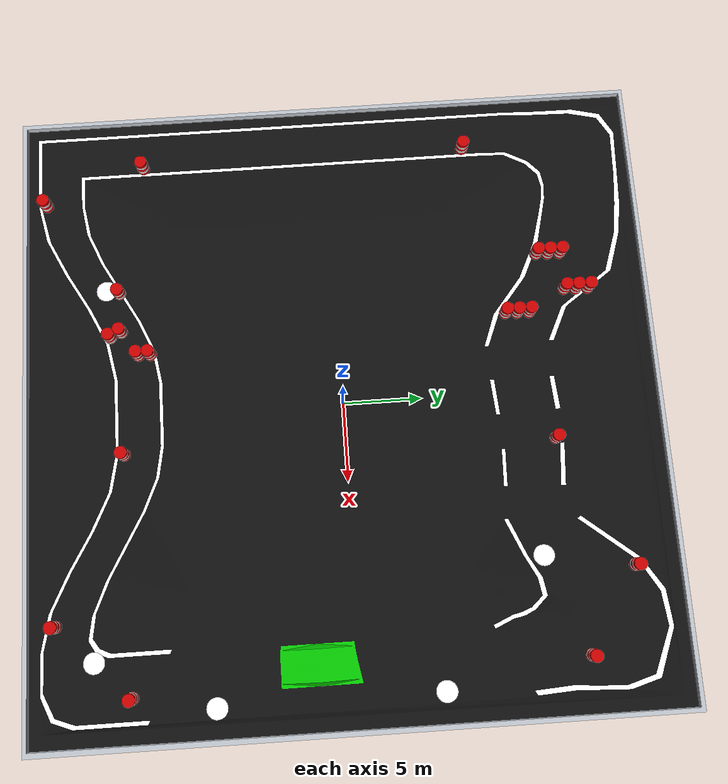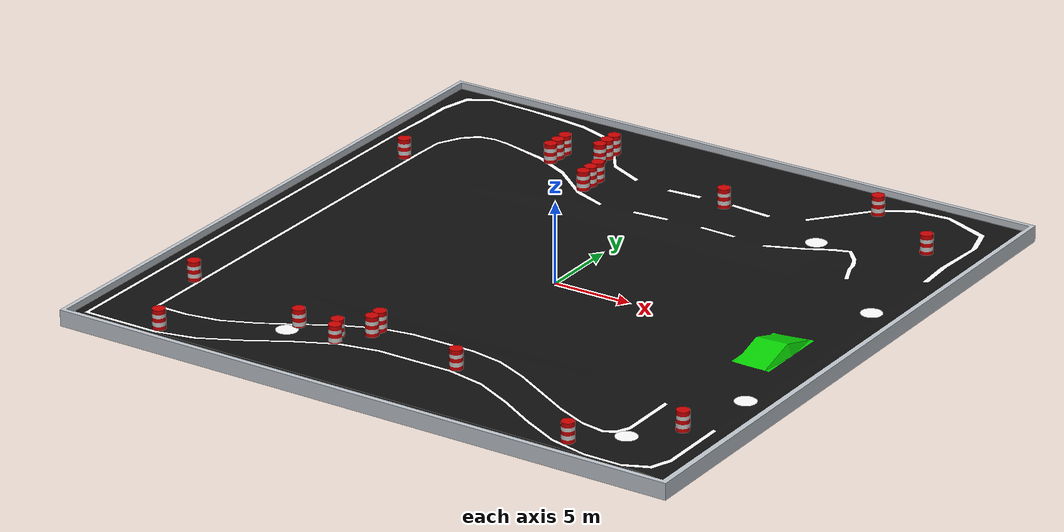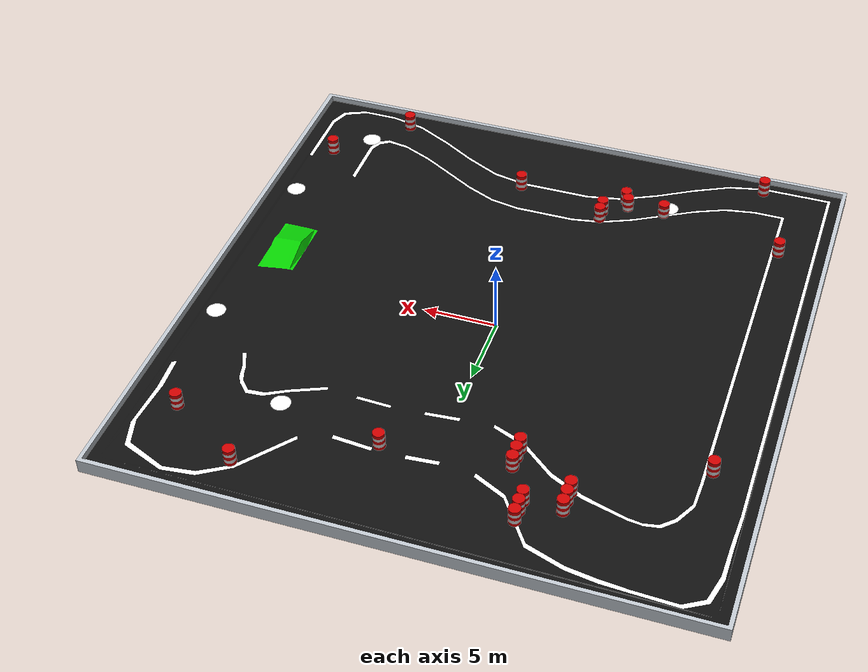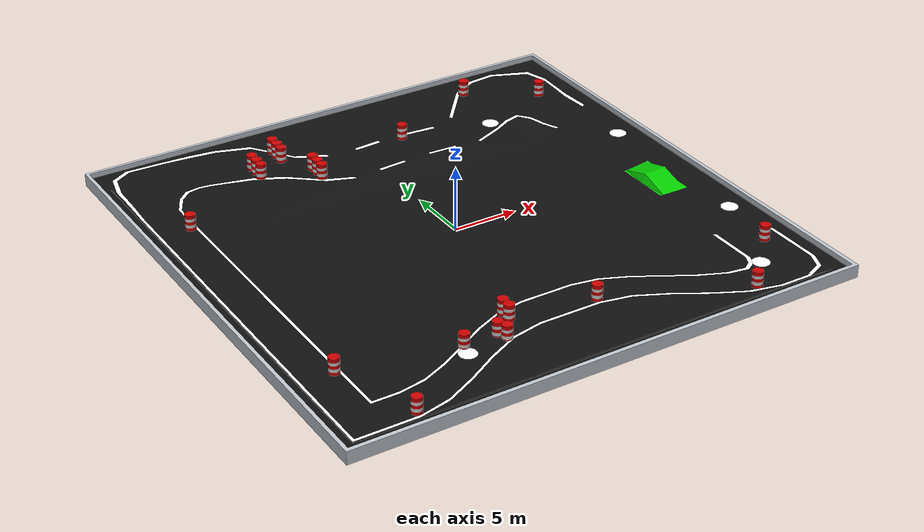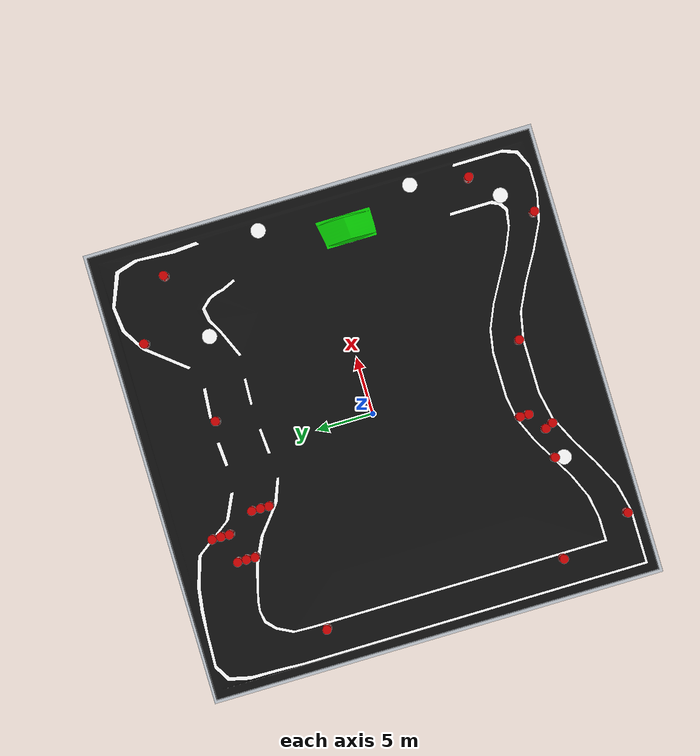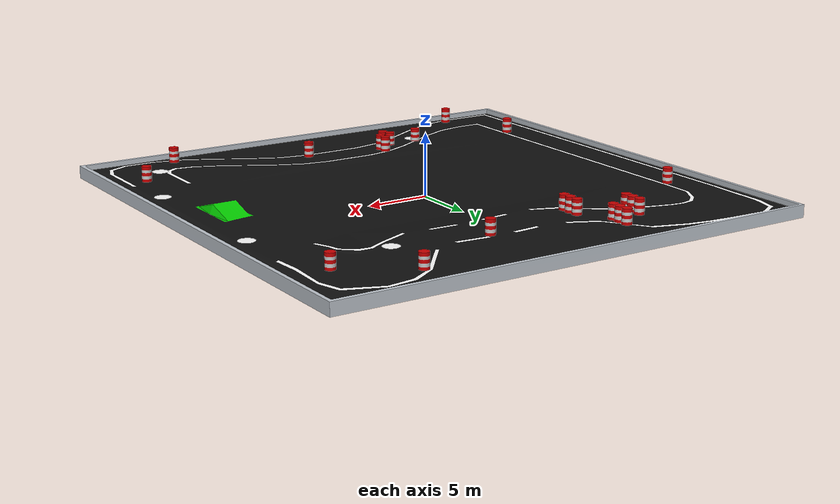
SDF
<sdf version="1.7">
 <world name="default">
  <light name="sun" type="directional">
   <pose>0 0 10 0 -0 0</pose>
   <diffuse>0.8 0.8 0.8 1</diffuse>
   <specular>0.2 0.2 0.2 1</specular>
   <attenuation>
    <range>1000</range>
    <constant>0.9</constant>
    <linear>0.01</linear>
    <quadratic>0.001</quadratic>
   </attenuation>
   <direction>-0.5 0.1 -0.9</direction>
   <spot><inner_angle>0</inner_angle><outer_angle>0</outer_angle><falloff>0</falloff></spot>
  </light>
  <physics type="ode">
   <max_step_size>0.001</max_step_size>
   <real_time_factor>1</real_time_factor>
   <real_time_update_rate>1000</real_time_update_rate>
  </physics>
  <scene><ambient>0.4 0.4 0.4 1</ambient><background>0.7 0.7 0.7 1</background><shadows>1</shadows></scene>
  <spherical_coordinates>
   <surface_model>EARTH_WGS84</surface_model>
   <latitude_deg>0</latitude_deg>
   <longitude_deg>0</longitude_deg>
   <elevation>0</elevation>
   <heading_deg>0</heading_deg>
  </spherical_coordinates>
  <gravity>0 0 -9.8</gravity>
  <magnetic_field>6e-06 2.3e-05 -4.2e-05</magnetic_field>
  <atmosphere type="adiabatic"/>
  <model name="gazebo_world_5_Circle">
   <link name="gazebo_world_5_Circle_link">
    <inertial>
     <mass>1</mass>
     <inertia><ixx>1</ixx><ixy>0</ixy><ixz>0</ixz><iyy>1</iyy><iyz>0</iyz><izz>1</izz></inertia>
    </inertial>
    <collision name="gazebo_world_5_Circle_link_collision">
     <geometry><mesh><scale>1 1 1</scale><uri>model://gazebo_world_5_Circle.dae</uri></mesh></geometry>
    </collision>
    <visual name="gazebo_world_5_Circle_link_visual">
     <geometry><mesh><scale>1 1 1</scale><uri>model://gazebo_world_5_Circle.dae</uri></mesh></geometry>
    </visual>
   </link>
   <static>1</static>
  </model>
  <model name="gazebo_world_5_Circle.003">
   <link name="gazebo_world_5_Circle.003_link">
    <inertial>
     <mass>1</mass>
     <inertia><ixx>1</ixx><ixy>0</ixy><ixz>0</ixz><iyy>1</iyy><iyz>0</iyz><izz>1</izz></inertia>
    </inertial>
    <collision name="gazebo_world_5_Circle.003_link_collision">
     <geometry><mesh><scale>1 1 1</scale><uri>model://gazebo_world_5_Circle.003.dae</uri></mesh></geometry>
    </collision>
    <visual name="gazebo_world_5_Circle.003_link_visual">
     <geometry><mesh><scale>1 1 1</scale><uri>model://gazebo_world_5_Circle.003.dae</uri></mesh></geometry>
    </visual>
   </link>
   <static>1</static>
  </model>
  <model name="gazebo_world_5_Circle.002">
   <link name="gazebo_world_5_Circle.002_link">
    <inertial>
     <mass>1</mass>
     <inertia><ixx>1</ixx><ixy>0</ixy><ixz>0</ixz><iyy>1</iyy><iyz>0</iyz><izz>1</izz></inertia>
    </inertial>
    <collision name="gazebo_world_5_Circle.002_link_collision">
     <geometry><mesh><scale>1 1 1</scale><uri>model://gazebo_world_5_Circle.002.dae</uri></mesh></geometry>
    </collision>
    <visual name="gazebo_world_5_Circle.002_link_visual">
     <geometry><mesh><scale>1 1 1</scale><uri>model://gazebo_world_5_Circle.002.dae</uri></mesh></geometry>
    </visual>
   </link>
   <static>1</static>
  </model>
  <model name="gazebo_world_5_Circle.012">
   <link name="gazebo_world_5_Circle.012_link">
    <inertial>
     <mass>1</mass>
     <inertia><ixx>1</ixx><ixy>0</ixy><ixz>0</ixz><iyy>1</iyy><iyz>0</iyz><izz>1</izz></inertia>
    </inertial>
    <collision name="gazebo_world_5_Circle.012_link_collision">
     <geometry><mesh><scale>1 1 1</scale><uri>model://gazebo_world_5_Circle.012.dae</uri></mesh></geometry>
    </collision>
    <visual name="gazebo_world_5_Circle.012_link_visual">
     <geometry><mesh><scale>1 1 1</scale><uri>model://gazebo_world_5_Circle.012.dae</uri></mesh></geometry>
    </visual>
   </link>
   <static>1</static>
  </model>
  <model name="gazebo_world_5_Circle.004">
   <link name="gazebo_world_5_Circle.004_link">
    <inertial>
     <mass>1</mass>
     <inertia><ixx>1</ixx><ixy>0</ixy><ixz>0</ixz><iyy>1</iyy><iyz>0</iyz><izz>1</izz></inertia>
    </inertial>
    <collision name="gazebo_world_5_Circle.004_link_collision">
     <geometry><mesh><scale>1 1 1</scale><uri>model://gazebo_world_5_Circle.004.dae</uri></mesh></geometry>
    </collision>
    <visual name="gazebo_world_5_Circle.004_link_visual">
     <geometry><mesh><scale>1 1 1</scale><uri>model://gazebo_world_5_Circle.004.dae</uri></mesh></geometry>
    </visual>
   </link>
   <static>1</static>
  </model>
  <model name="gazebo_world_5_Circle.005">
   <link name="gazebo_world_5_Circle.005_link">
    <inertial>
     <mass>1</mass>
     <inertia><ixx>1</ixx><ixy>0</ixy><ixz>0</ixz><iyy>1</iyy><iyz>0</iyz><izz>1</izz></inertia>
    </inertial>
    <collision name="gazebo_world_5_Circle.005_link_collision">
     <geometry><mesh><scale>1 1 1</scale><uri>model://gazebo_world_5_Circle.005.dae</uri></mesh></geometry>
    </collision>
    <visual name="gazebo_world_5_Circle.005_link_visual">
     <geometry><mesh><scale>1 1 1</scale><uri>model://gazebo_world_5_Circle.005.dae</uri></mesh></geometry>
    </visual>
   </link>
   <static>1</static>
  </model>
  <model name="gazebo_world_5_Circle.015">
   <link name="gazebo_world_5_Circle.015_link">
    <inertial>
     <mass>1</mass>
     <inertia><ixx>1</ixx><ixy>0</ixy><ixz>0</ixz><iyy>1</iyy><iyz>0</iyz><izz>1</izz></inertia>
    </inertial>
    <collision name="gazebo_world_5_Circle.015_link_collision">
     <geometry><mesh><scale>1 1 1</scale><uri>model://gazebo_world_5_Circle.015.dae</uri></mesh></geometry>
    </collision>
    <visual name="gazebo_world_5_Circle.015_link_visual">
     <geometry><mesh><scale>1 1 1</scale><uri>model://gazebo_world_5_Circle.015.dae</uri></mesh></geometry>
    </visual>
   </link>
   <static>1</static>
  </model>
  <model name="gazebo_world_5_Circle.006">
   <link name="gazebo_world_5_Circle.006_link">
    <inertial>
     <mass>1</mass>
     <inertia><ixx>1</ixx><ixy>0</ixy><ixz>0</ixz><iyy>1</iyy><iyz>0</iyz><izz>1</izz></inertia>
    </inertial>
    <collision name="gazebo_world_5_Circle.006_link_collision">
     <geometry><mesh><scale>1 1 1</scale><uri>model://gazebo_world_5_Circle.006.dae</uri></mesh></geometry>
    </collision>
    <visual name="gazebo_world_5_Circle.006_link_visual">
     <geometry><mesh><scale>1 1 1</scale><uri>model://gazebo_world_5_Circle.006.dae</uri></mesh></geometry>
    </visual>
   </link>
   <static>1</static>
  </model>
  <model name="gazebo_world_5_Circle.009">
   <link name="gazebo_world_5_Circle.009_link">
    <inertial>
     <mass>1</mass>
     <inertia><ixx>1</ixx><ixy>0</ixy><ixz>0</ixz><iyy>1</iyy><iyz>0</iyz><izz>1</izz></inertia>
    </inertial>
    <collision name="gazebo_world_5_Circle.009_link_collision">
     <geometry><mesh><scale>1 1 1</scale><uri>model://gazebo_world_5_Circle.009.dae</uri></mesh></geometry>
    </collision>
    <visual name="gazebo_world_5_Circle.009_link_visual">
     <geometry><mesh><scale>1 1 1</scale><uri>model://gazebo_world_5_Circle.009.dae</uri></mesh></geometry>
    </visual>
   </link>
   <static>1</static>
  </model>
  <model name="gazebo_world_5_Circle.007">
   <link name="gazebo_world_5_Circle.007_link">
    <inertial>
     <mass>1</mass>
     <inertia><ixx>1</ixx><ixy>0</ixy><ixz>0</ixz><iyy>1</iyy><iyz>0</iyz><izz>1</izz></inertia>
    </inertial>
    <collision name="gazebo_world_5_Circle.007_link_collision">
     <geometry><mesh><scale>1 1 1</scale><uri>model://gazebo_world_5_Circle.007.dae</uri></mesh></geometry>
    </collision>
    <visual name="gazebo_world_5_Circle.007_link_visual">
     <geometry><mesh><scale>1 1 1</scale><uri>model://gazebo_world_5_Circle.007.dae</uri></mesh></geometry>
    </visual>
   </link>
   <static>1</static>
  </model>
  <model name="gazebo_world_5_Circle.022">
   <link name="gazebo_world_5_Circle.022_link">
    <inertial>
     <mass>1</mass>
     <inertia><ixx>1</ixx><ixy>0</ixy><ixz>0</ixz><iyy>1</iyy><iyz>0</iyz><izz>1</izz></inertia>
    </inertial>
    <collision name="gazebo_world_5_Circle.022_link_collision">
     <geometry><mesh><scale>1 1 1</scale><uri>model://gazebo_world_5_Circle.022.dae</uri></mesh></geometry>
    </collision>
    <visual name="gazebo_world_5_Circle.022_link_visual">
     <geometry><mesh><scale>1 1 1</scale><uri>model://gazebo_world_5_Circle.022.dae</uri></mesh></geometry>
    </visual>
   </link>
   <static>1</static>
  </model>
  <model name="gazebo_world_5_Circle.008">
   <link name="gazebo_world_5_Circle.008_link">
    <inertial>
     <mass>1</mass>
     <inertia><ixx>1</ixx><ixy>0</ixy><ixz>0</ixz><iyy>1</iyy><iyz>0</iyz><izz>1</izz></inertia>
    </inertial>
    <collision name="gazebo_world_5_Circle.008_link_collision">
     <geometry><mesh><scale>1 1 1</scale><uri>model://gazebo_world_5_Circle.008.dae</uri></mesh></geometry>
    </collision>
    <visual name="gazebo_world_5_Circle.008_link_visual">
     <geometry><mesh><scale>1 1 1</scale><uri>model://gazebo_world_5_Circle.008.dae</uri></mesh></geometry>
    </visual>
   </link>
   <static>1</static>
  </model>
  <model name="gazebo_world_5_Circle.016">
   <link name="gazebo_world_5_Circle.016_link">
    <inertial>
     <mass>1</mass>
     <inertia><ixx>1</ixx><ixy>0</ixy><ixz>0</ixz><iyy>1</iyy><iyz>0</iyz><izz>1</izz></inertia>
    </inertial>
    <collision name="gazebo_world_5_Circle.016_link_collision">
     <geometry><mesh><scale>1 1 1</scale><uri>model://gazebo_world_5_Circle.016.dae</uri></mesh></geometry>
    </collision>
    <visual name="gazebo_world_5_Circle.016_link_visual">
     <geometry><mesh><scale>1 1 1</scale><uri>model://gazebo_world_5_Circle.016.dae</uri></mesh></geometry>
    </visual>
   </link>
   <static>1</static>
  </model>
  <model name="gazebo_world_5_Plane">
   <link name="gazebo_world_5_Plane_link">
    <inertial>
     <mass>1</mass>
     <inertia><ixx>1</ixx><ixy>0</ixy><ixz>0</ixz><iyy>1</iyy><iyz>0</iyz><izz>1</izz></inertia>
    </inertial>
    <collision name="gazebo_world_5_Plane_link_collision">
     <geometry><mesh><scale>1 1 1</scale><uri>model://gazebo_world_5_Plane_dotted.dae</uri></mesh></geometry>
    </collision>
    <visual name="gazebo_world_5_Plane_link_visual">
     <geometry><mesh><scale>1 1 1</scale><uri>model://gazebo_world_5_Plane_dotted.dae</uri></mesh></geometry>
    </visual>
   </link>
   <static>1</static>
  </model>
  <model name="gazebo_world_5_Circle.010">
   <link name="gazebo_world_5_Circle.010_link">
    <inertial>
     <mass>1</mass>
     <inertia><ixx>1</ixx><ixy>0</ixy><ixz>0</ixz><iyy>1</iyy><iyz>0</iyz><izz>1</izz></inertia>
    </inertial>
    <collision name="gazebo_world_5_Circle.010_link_collision">
     <geometry><mesh><scale>1 1 1</scale><uri>model://gazebo_world_5_Circle.010.dae</uri></mesh></geometry>
    </collision>
    <visual name="gazebo_world_5_Circle.010_link_visual">
     <geometry><mesh><scale>1 1 1</scale><uri>model://gazebo_world_5_Circle.010.dae</uri></mesh></geometry>
    </visual>
   </link>
   <static>1</static>
  </model>
  <model name="gazebo_world_5_Circle.013">
   <link name="gazebo_world_5_Circle.013_link">
    <inertial>
     <mass>1</mass>
     <inertia><ixx>1</ixx><ixy>0</ixy><ixz>0</ixz><iyy>1</iyy><iyz>0</iyz><izz>1</izz></inertia>
    </inertial>
    <collision name="gazebo_world_5_Circle.013_link_collision">
     <geometry><mesh><scale>1 1 1</scale><uri>model://gazebo_world_5_Circle.013.dae</uri></mesh></geometry>
    </collision>
    <visual name="gazebo_world_5_Circle.013_link_visual">
     <geometry><mesh><scale>1 1 1</scale><uri>model://gazebo_world_5_Circle.013.dae</uri></mesh></geometry>
    </visual>
   </link>
   <static>1</static>
  </model>
  <model name="gazebo_world_5_Circle.011">
   <link name="gazebo_world_5_Circle.011_link">
    <inertial>
     <mass>1</mass>
     <inertia><ixx>1</ixx><ixy>0</ixy><ixz>0</ixz><iyy>1</iyy><iyz>0</iyz><izz>1</izz></inertia>
    </inertial>
    <collision name="gazebo_world_5_Circle.011_link_collision">
     <geometry><mesh><scale>1 1 1</scale><uri>model://gazebo_world_5_Circle.011.dae</uri></mesh></geometry>
    </collision>
    <visual name="gazebo_world_5_Circle.011_link_visual">
     <geometry><mesh><scale>1 1 1</scale><uri>model://gazebo_world_5_Circle.011.dae</uri></mesh></geometry>
    </visual>
   </link>
   <static>1</static>
  </model>
  <model name="gazebo_world_5_Circle.017">
   <link name="gazebo_world_5_Circle.017_link">
    <inertial>
     <mass>1</mass>
     <inertia><ixx>1</ixx><ixy>0</ixy><ixz>0</ixz><iyy>1</iyy><iyz>0</iyz><izz>1</izz></inertia>
    </inertial>
    <collision name="gazebo_world_5_Circle.017_link_collision">
     <geometry><mesh><scale>1 1 1</scale><uri>model://gazebo_world_5_Circle.017.dae</uri></mesh></geometry>
    </collision>
    <visual name="gazebo_world_5_Circle.017_link_visual">
     <geometry><mesh><scale>1 1 1</scale><uri>model://gazebo_world_5_Circle.017.dae</uri></mesh></geometry>
    </visual>
   </link>
   <static>1</static>
  </model>
  <model name="gazebo_world_5_Circle.023">
   <link name="gazebo_world_5_Circle.023_link">
    <inertial>
     <mass>1</mass>
     <inertia><ixx>1</ixx><ixy>0</ixy><ixz>0</ixz><iyy>1</iyy><iyz>0</iyz><izz>1</izz></inertia>
    </inertial>
    <collision name="gazebo_world_5_Circle.023_link_collision">
     <geometry><mesh><scale>1 1 1</scale><uri>model://gazebo_world_5_Circle.023.dae</uri></mesh></geometry>
    </collision>
    <visual name="gazebo_world_5_Circle.023_link_visual">
     <geometry><mesh><scale>1 1 1</scale><uri>model://gazebo_world_5_Circle.023.dae</uri></mesh></geometry>
    </visual>
   </link>
   <static>1</static>
  </model>
  <model name="gazebo_world_5_Circle.018">
   <link name="gazebo_world_5_Circle.018_link">
    <inertial>
     <mass>1</mass>
     <inertia><ixx>1</ixx><ixy>0</ixy><ixz>0</ixz><iyy>1</iyy><iyz>0</iyz><izz>1</izz></inertia>
    </inertial>
    <collision name="gazebo_world_5_Circle.018_link_collision">
     <geometry><mesh><scale>1 1 1</scale><uri>model://gazebo_world_5_Circle.018.dae</uri></mesh></geometry>
    </collision>
    <visual name="gazebo_world_5_Circle.018_link_visual">
     <geometry><mesh><scale>1 1 1</scale><uri>model://gazebo_world_5_Circle.018.dae</uri></mesh></geometry>
    </visual>
   </link>
   <static>1</static>
  </model>
  <model name="gazebo_world_5_Circle.014">
   <link name="gazebo_world_5_Circle.014_link">
    <inertial>
     <mass>1</mass>
     <inertia><ixx>1</ixx><ixy>0</ixy><ixz>0</ixz><iyy>1</iyy><iyz>0</iyz><izz>1</izz></inertia>
    </inertial>
    <collision name="gazebo_world_5_Circle.014_link_collision">
     <geometry><mesh><scale>1 1 1</scale><uri>model://gazebo_world_5_Circle.014.dae</uri></mesh></geometry>
    </collision>
    <visual name="gazebo_world_5_Circle.014_link_visual">
     <geometry><mesh><scale>1 1 1</scale><uri>model://gazebo_world_5_Circle.014.dae</uri></mesh></geometry>
    </visual>
   </link>
   <static>1</static>
  </model>
  <model name="gazebo_world_5_Circle.019">
   <link name="gazebo_world_5_Circle.019_link">
    <inertial>
     <mass>1</mass>
     <inertia><ixx>1</ixx><ixy>0</ixy><ixz>0</ixz><iyy>1</iyy><iyz>0</iyz><izz>1</izz></inertia>
    </inertial>
    <collision name="gazebo_world_5_Circle.019_link_collision">
     <geometry><mesh><scale>1 1 1</scale><uri>model://gazebo_world_5_Circle.019.dae</uri></mesh></geometry>
    </collision>
    <visual name="gazebo_world_5_Circle.019_link_visual">
     <geometry><mesh><scale>1 1 1</scale><uri>model://gazebo_world_5_Circle.019.dae</uri></mesh></geometry>
    </visual>
   </link>
   <static>1</static>
  </model>
  <model name="gazebo_world_5_Circle.024">
   <link name="gazebo_world_5_Circle.024_link">
    <inertial>
     <mass>1</mass>
     <inertia><ixx>1</ixx><ixy>0</ixy><ixz>0</ixz><iyy>1</iyy><iyz>0</iyz><izz>1</izz></inertia>
    </inertial>
    <collision name="gazebo_world_5_Circle.024_link_collision">
     <geometry><mesh><scale>1 1 1</scale><uri>model://gazebo_world_5_Circle.024.dae</uri></mesh></geometry>
    </collision>
    <visual name="gazebo_world_5_Circle.024_link_visual">
     <geometry><mesh><scale>1 1 1</scale><uri>model://gazebo_world_5_Circle.024.dae</uri></mesh></geometry>
    </visual>
   </link>
   <static>1</static>
  </model>
  <model name="gazebo_world_5_Circle.026">
   <link name="gazebo_world_5_Circle.026_link">
    <inertial>
     <mass>1</mass>
     <inertia><ixx>1</ixx><ixy>0</ixy><ixz>0</ixz><iyy>1</iyy><iyz>0</iyz><izz>1</izz></inertia>
    </inertial>
    <collision name="gazebo_world_5_Circle.026_link_collision">
     <geometry><mesh><scale>1 1 1</scale><uri>model://gazebo_world_5_Circle.026.dae</uri></mesh></geometry>
    </collision>
    <visual name="gazebo_world_5_Circle.026_link_visual">
     <geometry><mesh><scale>1 1 1</scale><uri>model://gazebo_world_5_Circle.026.dae</uri></mesh></geometry>
    </visual>
   </link>
   <static>1</static>
  </model>
  <model name="gazebo_world_5_Circle.001">
   <link name="gazebo_world_5_Circle.001_link">
    <inertial>
     <mass>1</mass>
     <inertia><ixx>1</ixx><ixy>0</ixy><ixz>0</ixz><iyy>1</iyy><iyz>0</iyz><izz>1</izz></inertia>
    </inertial>
    <collision name="gazebo_world_5_Circle.001_link_collision">
     <geometry><mesh><scale>1 1 1</scale><uri>model://gazebo_world_5_Circle.001.dae</uri></mesh></geometry>
    </collision>
    <visual name="gazebo_world_5_Circle.001_link_visual">
     <geometry><mesh><scale>1 1 1</scale><uri>model://gazebo_world_5_Circle.001.dae</uri></mesh></geometry>
    </visual>
   </link>
   <static>1</static>
  </model>
  <model name="gazebo_world_5_Circle.020">
   <link name="gazebo_world_5_Circle.020_link">
    <inertial>
     <mass>1</mass>
     <inertia><ixx>1</ixx><ixy>0</ixy><ixz>0</ixz><iyy>1</iyy><iyz>0</iyz><izz>1</izz></inertia>
    </inertial>
    <collision name="gazebo_world_5_Circle.020_link_collision">
     <geometry><mesh><scale>1 1 1</scale><uri>model://gazebo_world_5_Circle.020.dae</uri></mesh></geometry>
    </collision>
    <visual name="gazebo_world_5_Circle.020_link_visual">
     <geometry><mesh><scale>1 1 1</scale><uri>model://gazebo_world_5_Circle.020.dae</uri></mesh></geometry>
    </visual>
   </link>
   <static>1</static>
  </model>
  <model name="gazebo_world_5_Circle.025">
   <link name="gazebo_world_5_Circle.025_link">
    <inertial>
     <mass>1</mass>
     <inertia><ixx>1</ixx><ixy>0</ixy><ixz>0</ixz><iyy>1</iyy><iyz>0</iyz><izz>1</izz></inertia>
    </inertial>
    <collision name="gazebo_world_5_Circle.025_link_collision">
     <geometry><mesh><scale>1 1 1</scale><uri>model://gazebo_world_5_Circle.025.dae</uri></mesh></geometry>
    </collision>
    <visual name="gazebo_world_5_Circle.025_link_visual">
     <geometry><mesh><scale>1 1 1</scale><uri>model://gazebo_world_5_Circle.025.dae</uri></mesh></geometry>
    </visual>
   </link>
   <static>1</static>
  </model>
  <model name="gazebo_world_5_Circle.021">
   <link name="gazebo_world_5_Circle.021_link">
    <inertial>
     <mass>1</mass>
     <inertia><ixx>1</ixx><ixy>0</ixy><ixz>0</ixz><iyy>1</iyy><iyz>0</iyz><izz>1</izz></inertia>
    </inertial>
    <collision name="gazebo_world_5_Circle.021_link_collision">
     <geometry><mesh><scale>1 1 1</scale><uri>model://gazebo_world_5_Circle.021.dae</uri></mesh></geometry>
    </collision>
    <visual name="gazebo_world_5_Circle.021_link_visual">
     <geometry><mesh><scale>1 1 1</scale><uri>model://gazebo_world_5_Circle.021.dae</uri></mesh></geometry>
    </visual>
   </link>
   <static>1</static>
  </model>
  <model name="gazebo_world_5_Circle.028">
   <link name="gazebo_world_5_Circle.028_link">
    <inertial>
     <mass>1</mass>
     <inertia><ixx>1</ixx><ixy>0</ixy><ixz>0</ixz><iyy>1</iyy><iyz>0</iyz><izz>1</izz></inertia>
    </inertial>
    <collision name="gazebo_world_5_Circle.028_link_collision">
     <geometry><mesh><scale>1 1 1</scale><uri>model://gazebo_world_5_Circle.028.dae</uri></mesh></geometry>
    </collision>
    <visual name="gazebo_world_5_Circle.028_link_visual">
     <geometry><mesh><scale>1 1 1</scale><uri>model://gazebo_world_5_Circle.028.dae</uri></mesh></geometry>
    </visual>
   </link>
   <static>1</static>
  </model>
 </world>
</sdf>
